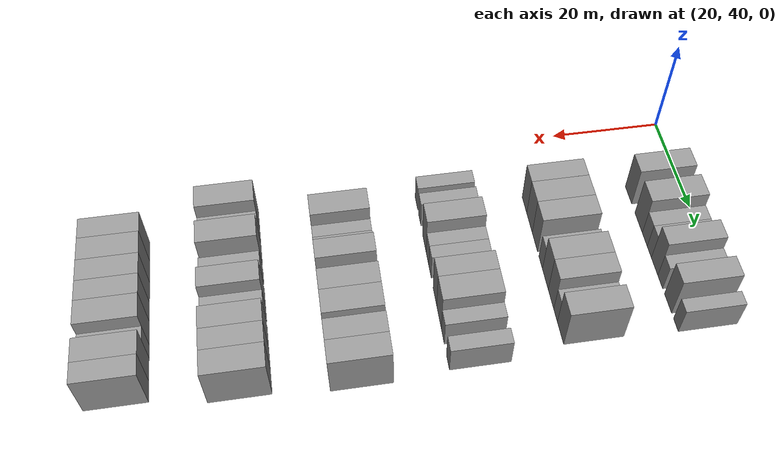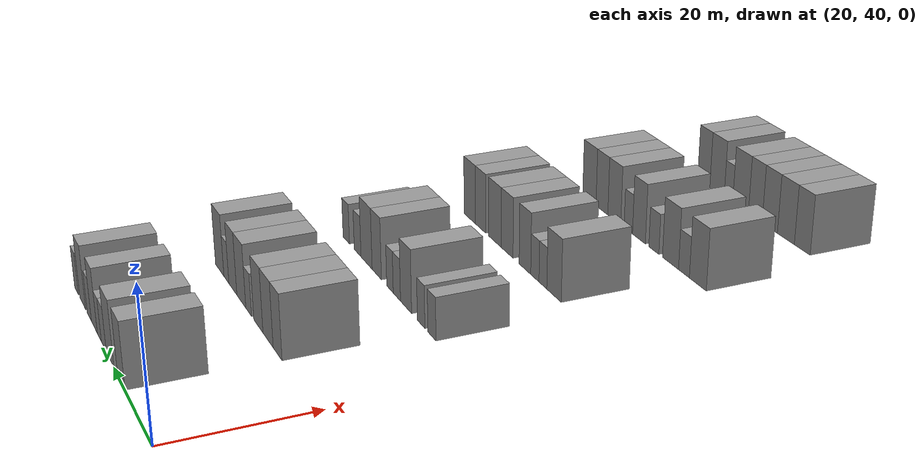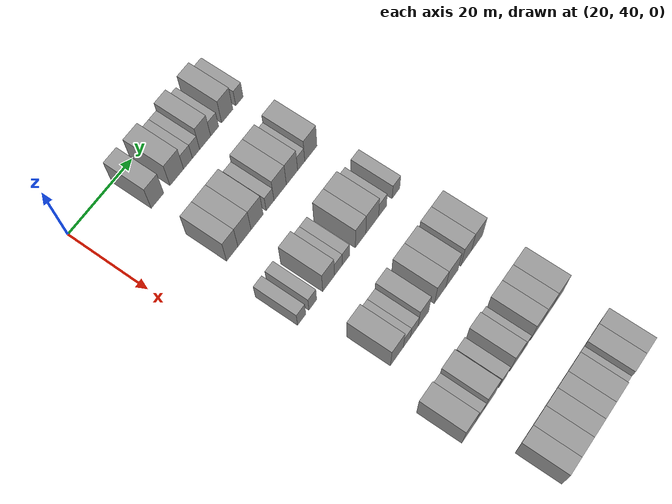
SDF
<sdf version="1.6">
 <world name="default">
  <model name="building_102">
   <static>1</static>
   <pose>25.0000 55.7656 0 0.000000 0.000000 0.000000</pose>
   <link name="link">
    <pose>0 0 4.50 0 0 0</pose>
    <collision name="collision"><geometry><box><size>10.0000 4.0245 9.0000</size></box></geometry></collision>
    <visual name="visual">
     <cast_shadows>0</cast_shadows>
     <geometry><box><size>10.0000 4.0245 9.0000</size></box></geometry>
     <material>
      <script>
       <uri>model://grey_wall/materials/scripts</uri>
       <uri>model://grey_wall/materials/textures</uri>
       <name>vrc/grey_wall</name>
      </script>
     </material>
    </visual>
   </link>
  </model>
  <model name="building_103">
   <static>1</static>
   <pose>25.0000 61.9876 0 0.000000 0.000000 0.000000</pose>
   <link name="link">
    <pose>0 0 4.50 0 0 0</pose>
    <collision name="collision"><geometry><box><size>10.0000 4.4195 9.0000</size></box></geometry></collision>
    <visual name="visual">
     <cast_shadows>0</cast_shadows>
     <geometry><box><size>10.0000 4.4195 9.0000</size></box></geometry>
     <material>
      <script>
       <uri>model://grey_wall/materials/scripts</uri>
       <uri>model://grey_wall/materials/textures</uri>
       <name>vrc/grey_wall</name>
      </script>
     </material>
    </visual>
   </link>
  </model>
  <model name="building_104">
   <static>1</static>
   <pose>25.0000 65.6505 0 0.000000 0.000000 0.000000</pose>
   <link name="link">
    <pose>0 0 3.00 0 0 0</pose>
    <collision name="collision"><geometry><box><size>10.0000 2.9064 6.0000</size></box></geometry></collision>
    <visual name="visual">
     <cast_shadows>0</cast_shadows>
     <geometry><box><size>10.0000 2.9064 6.0000</size></box></geometry>
     <material>
      <script>
       <uri>model://grey_wall/materials/scripts</uri>
       <uri>model://grey_wall/materials/textures</uri>
       <name>vrc/grey_wall</name>
      </script>
     </material>
    </visual>
   </link>
  </model>
  <model name="building_105">
   <static>1</static>
   <pose>25.0000 68.3104 0 0.000000 0.000000 0.000000</pose>
   <link name="link">
    <pose>0 0 3.00 0 0 0</pose>
    <collision name="collision"><geometry><box><size>10.0000 2.4135 6.0000</size></box></geometry></collision>
    <visual name="visual">
     <cast_shadows>0</cast_shadows>
     <geometry><box><size>10.0000 2.4135 6.0000</size></box></geometry>
     <material>
      <script>
       <uri>model://grey_wall/materials/scripts</uri>
       <uri>model://grey_wall/materials/textures</uri>
       <name>vrc/grey_wall</name>
      </script>
     </material>
    </visual>
   </link>
  </model>
  <model name="building_106">
   <static>1</static>
   <pose>25.0000 71.3491 0 0.000000 0.000000 0.000000</pose>
   <link name="link">
    <pose>0 0 4.50 0 0 0</pose>
    <collision name="collision"><geometry><box><size>10.0000 3.6638 9.0000</size></box></geometry></collision>
    <visual name="visual">
     <cast_shadows>0</cast_shadows>
     <geometry><box><size>10.0000 3.6638 9.0000</size></box></geometry>
     <material>
      <script>
       <uri>model://grey_wall/materials/scripts</uri>
       <uri>model://grey_wall/materials/textures</uri>
       <name>vrc/grey_wall</name>
      </script>
     </material>
    </visual>
   </link>
  </model>
  <model name="building_107">
   <static>1</static>
   <pose>25.0000 74.5199 0 0.000000 0.000000 0.000000</pose>
   <link name="link">
    <pose>0 0 3.00 0 0 0</pose>
    <collision name="collision"><geometry><box><size>10.0000 2.6778 6.0000</size></box></geometry></collision>
    <visual name="visual">
     <cast_shadows>0</cast_shadows>
     <geometry><box><size>10.0000 2.6778 6.0000</size></box></geometry>
     <material>
      <script>
       <uri>model://grey_wall/materials/scripts</uri>
       <uri>model://grey_wall/materials/textures</uri>
       <name>vrc/grey_wall</name>
      </script>
     </material>
    </visual>
   </link>
  </model>
  <model name="building_108">
   <static>1</static>
   <pose>25.0000 78.7645 0 0.000000 0.000000 0.000000</pose>
   <link name="link">
    <pose>0 0 4.50 0 0 0</pose>
    <collision name="collision"><geometry><box><size>10.0000 3.8114 9.0000</size></box></geometry></collision>
    <visual name="visual">
     <cast_shadows>0</cast_shadows>
     <geometry><box><size>10.0000 3.8114 9.0000</size></box></geometry>
     <material>
      <script>
       <uri>model://grey_wall/materials/scripts</uri>
       <uri>model://grey_wall/materials/textures</uri>
       <name>vrc/grey_wall</name>
      </script>
     </material>
    </visual>
   </link>
  </model>
  <model name="building_109">
   <static>1</static>
   <pose>25.0000 82.9263 0 0.000000 0.000000 0.000000</pose>
   <link name="link">
    <pose>0 0 3.00 0 0 0</pose>
    <collision name="collision"><geometry><box><size>10.0000 2.5121 6.0000</size></box></geometry></collision>
    <visual name="visual">
     <cast_shadows>0</cast_shadows>
     <geometry><box><size>10.0000 2.5121 6.0000</size></box></geometry>
     <material>
      <script>
       <uri>model://grey_wall/materials/scripts</uri>
       <uri>model://grey_wall/materials/textures</uri>
       <name>vrc/grey_wall</name>
      </script>
     </material>
    </visual>
   </link>
  </model>
  <model name="building_267">
   <static>1</static>
   <pose>44.0000 55.1977 0 0.000000 0.000000 0.000000</pose>
   <link name="link">
    <pose>0 0 4.50 0 0 0</pose>
    <collision name="collision"><geometry><box><size>10.0000 3.6688 9.0000</size></box></geometry></collision>
    <visual name="visual">
     <cast_shadows>0</cast_shadows>
     <geometry><box><size>10.0000 3.6688 9.0000</size></box></geometry>
     <material>
      <script>
       <uri>model://grey_wall/materials/scripts</uri>
       <uri>model://grey_wall/materials/textures</uri>
       <name>vrc/grey_wall</name>
      </script>
     </material>
    </visual>
   </link>
  </model>
  <model name="building_268">
   <static>1</static>
   <pose>44.0000 59.1911 0 0.000000 0.000000 0.000000</pose>
   <link name="link">
    <pose>0 0 4.50 0 0 0</pose>
    <collision name="collision"><geometry><box><size>10.0000 4.3178 9.0000</size></box></geometry></collision>
    <visual name="visual">
     <cast_shadows>0</cast_shadows>
     <geometry><box><size>10.0000 4.3178 9.0000</size></box></geometry>
     <material>
      <script>
       <uri>model://grey_wall/materials/scripts</uri>
       <uri>model://grey_wall/materials/textures</uri>
       <name>vrc/grey_wall</name>
      </script>
     </material>
    </visual>
   </link>
  </model>
  <model name="building_269">
   <static>1</static>
   <pose>44.0000 63.3660 0 0.000000 0.000000 0.000000</pose>
   <link name="link">
    <pose>0 0 4.50 0 0 0</pose>
    <collision name="collision"><geometry><box><size>10.0000 4.0321 9.0000</size></box></geometry></collision>
    <visual name="visual">
     <cast_shadows>0</cast_shadows>
     <geometry><box><size>10.0000 4.0321 9.0000</size></box></geometry>
     <material>
      <script>
       <uri>model://grey_wall/materials/scripts</uri>
       <uri>model://grey_wall/materials/textures</uri>
       <name>vrc/grey_wall</name>
      </script>
     </material>
    </visual>
   </link>
  </model>
  <model name="building_270">
   <static>1</static>
   <pose>44.0000 67.6890 0 0.000000 0.000000 0.000000</pose>
   <link name="link">
    <pose>0 0 3.00 0 0 0</pose>
    <collision name="collision"><geometry><box><size>10.0000 2.6138 6.0000</size></box></geometry></collision>
    <visual name="visual">
     <cast_shadows>0</cast_shadows>
     <geometry><box><size>10.0000 2.6138 6.0000</size></box></geometry>
     <material>
      <script>
       <uri>model://grey_wall/materials/scripts</uri>
       <uri>model://grey_wall/materials/textures</uri>
       <name>vrc/grey_wall</name>
      </script>
     </material>
    </visual>
   </link>
  </model>
  <model name="building_271">
   <static>1</static>
   <pose>44.0000 71.0904 0 0.000000 0.000000 0.000000</pose>
   <link name="link">
    <pose>0 0 4.50 0 0 0</pose>
    <collision name="collision"><geometry><box><size>10.0000 4.1890 9.0000</size></box></geometry></collision>
    <visual name="visual">
     <cast_shadows>0</cast_shadows>
     <geometry><box><size>10.0000 4.1890 9.0000</size></box></geometry>
     <material>
      <script>
       <uri>model://grey_wall/materials/scripts</uri>
       <uri>model://grey_wall/materials/textures</uri>
       <name>vrc/grey_wall</name>
      </script>
     </material>
    </visual>
   </link>
  </model>
  <model name="building_272">
   <static>1</static>
   <pose>44.0000 75.1054 0 0.000000 0.000000 0.000000</pose>
   <link name="link">
    <pose>0 0 4.50 0 0 0</pose>
    <collision name="collision"><geometry><box><size>10.0000 3.8410 9.0000</size></box></geometry></collision>
    <visual name="visual">
     <cast_shadows>0</cast_shadows>
     <geometry><box><size>10.0000 3.8410 9.0000</size></box></geometry>
     <material>
      <script>
       <uri>model://grey_wall/materials/scripts</uri>
       <uri>model://grey_wall/materials/textures</uri>
       <name>vrc/grey_wall</name>
      </script>
     </material>
    </visual>
   </link>
  </model>
  <model name="building_273">
   <static>1</static>
   <pose>44.0000 78.2526 0 0.000000 0.000000 0.000000</pose>
   <link name="link">
    <pose>0 0 3.00 0 0 0</pose>
    <collision name="collision"><geometry><box><size>10.0000 2.4534 6.0000</size></box></geometry></collision>
    <visual name="visual">
     <cast_shadows>0</cast_shadows>
     <geometry><box><size>10.0000 2.4534 6.0000</size></box></geometry>
     <material>
      <script>
       <uri>model://grey_wall/materials/scripts</uri>
       <uri>model://grey_wall/materials/textures</uri>
       <name>vrc/grey_wall</name>
      </script>
     </material>
    </visual>
   </link>
  </model>
  <model name="building_274">
   <static>1</static>
   <pose>44.0000 81.5974 0 0.000000 0.000000 0.000000</pose>
   <link name="link">
    <pose>0 0 4.50 0 0 0</pose>
    <collision name="collision"><geometry><box><size>10.0000 4.2361 9.0000</size></box></geometry></collision>
    <visual name="visual">
     <cast_shadows>0</cast_shadows>
     <geometry><box><size>10.0000 4.2361 9.0000</size></box></geometry>
     <material>
      <script>
       <uri>model://grey_wall/materials/scripts</uri>
       <uri>model://grey_wall/materials/textures</uri>
       <name>vrc/grey_wall</name>
      </script>
     </material>
    </visual>
   </link>
  </model>
  <model name="building_443">
   <static>1</static>
   <pose>63.0000 52.0084 0 0.000000 0.000000 0.000000</pose>
   <link name="link">
    <pose>0 0 3.00 0 0 0</pose>
    <collision name="collision"><geometry><box><size>10.0000 2.6977 6.0000</size></box></geometry></collision>
    <visual name="visual">
     <cast_shadows>0</cast_shadows>
     <geometry><box><size>10.0000 2.6977 6.0000</size></box></geometry>
     <material>
      <script>
       <uri>model://grey_wall/materials/scripts</uri>
       <uri>model://grey_wall/materials/textures</uri>
       <name>vrc/grey_wall</name>
      </script>
     </material>
    </visual>
   </link>
  </model>
  <model name="building_444">
   <static>1</static>
   <pose>63.0000 55.6458 0 0.000000 0.000000 0.000000</pose>
   <link name="link">
    <pose>0 0 3.00 0 0 0</pose>
    <collision name="collision"><geometry><box><size>10.0000 2.5772 6.0000</size></box></geometry></collision>
    <visual name="visual">
     <cast_shadows>0</cast_shadows>
     <geometry><box><size>10.0000 2.5772 6.0000</size></box></geometry>
     <material>
      <script>
       <uri>model://grey_wall/materials/scripts</uri>
       <uri>model://grey_wall/materials/textures</uri>
       <name>vrc/grey_wall</name>
      </script>
     </material>
    </visual>
   </link>
  </model>
  <model name="building_445">
   <static>1</static>
   <pose>63.0000 60.9073 0 0.000000 0.000000 0.000000</pose>
   <link name="link">
    <pose>0 0 4.50 0 0 0</pose>
    <collision name="collision"><geometry><box><size>10.0000 3.9458 9.0000</size></box></geometry></collision>
    <visual name="visual">
     <cast_shadows>0</cast_shadows>
     <geometry><box><size>10.0000 3.9458 9.0000</size></box></geometry>
     <material>
      <script>
       <uri>model://grey_wall/materials/scripts</uri>
       <uri>model://grey_wall/materials/textures</uri>
       <name>vrc/grey_wall</name>
      </script>
     </material>
    </visual>
   </link>
  </model>
  <model name="building_446">
   <static>1</static>
   <pose>63.0000 64.2091 0 0.000000 0.000000 0.000000</pose>
   <link name="link">
    <pose>0 0 3.00 0 0 0</pose>
    <collision name="collision"><geometry><box><size>10.0000 2.6579 6.0000</size></box></geometry></collision>
    <visual name="visual">
     <cast_shadows>0</cast_shadows>
     <geometry><box><size>10.0000 2.6579 6.0000</size></box></geometry>
     <material>
      <script>
       <uri>model://grey_wall/materials/scripts</uri>
       <uri>model://grey_wall/materials/textures</uri>
       <name>vrc/grey_wall</name>
      </script>
     </material>
    </visual>
   </link>
  </model>
  <model name="building_447">
   <static>1</static>
   <pose>63.0000 66.7558 0 0.000000 0.000000 0.000000</pose>
   <link name="link">
    <pose>0 0 3.00 0 0 0</pose>
    <collision name="collision"><geometry><box><size>10.0000 2.4356 6.0000</size></box></geometry></collision>
    <visual name="visual">
     <cast_shadows>0</cast_shadows>
     <geometry><box><size>10.0000 2.4356 6.0000</size></box></geometry>
     <material>
      <script>
       <uri>model://grey_wall/materials/scripts</uri>
       <uri>model://grey_wall/materials/textures</uri>
       <name>vrc/grey_wall</name>
      </script>
     </material>
    </visual>
   </link>
  </model>
  <model name="building_448">
   <static>1</static>
   <pose>63.0000 71.7750 0 0.000000 0.000000 0.000000</pose>
   <link name="link">
    <pose>0 0 4.50 0 0 0</pose>
    <collision name="collision"><geometry><box><size>10.0000 3.6027 9.0000</size></box></geometry></collision>
    <visual name="visual">
     <cast_shadows>0</cast_shadows>
     <geometry><box><size>10.0000 3.6027 9.0000</size></box></geometry>
     <material>
      <script>
       <uri>model://grey_wall/materials/scripts</uri>
       <uri>model://grey_wall/materials/textures</uri>
       <name>vrc/grey_wall</name>
      </script>
     </material>
    </visual>
   </link>
  </model>
  <model name="building_449">
   <static>1</static>
   <pose>63.0000 75.8003 0 0.000000 0.000000 0.000000</pose>
   <link name="link">
    <pose>0 0 4.50 0 0 0</pose>
    <collision name="collision"><geometry><box><size>10.0000 4.4479 9.0000</size></box></geometry></collision>
    <visual name="visual">
     <cast_shadows>0</cast_shadows>
     <geometry><box><size>10.0000 4.4479 9.0000</size></box></geometry>
     <material>
      <script>
       <uri>model://grey_wall/materials/scripts</uri>
       <uri>model://grey_wall/materials/textures</uri>
       <name>vrc/grey_wall</name>
      </script>
     </material>
    </visual>
   </link>
  </model>
  <model name="building_450">
   <static>1</static>
   <pose>63.0000 79.4029 0 0.000000 0.000000 0.000000</pose>
   <link name="link">
    <pose>0 0 3.00 0 0 0</pose>
    <collision name="collision"><geometry><box><size>10.0000 2.7573 6.0000</size></box></geometry></collision>
    <visual name="visual">
     <cast_shadows>0</cast_shadows>
     <geometry><box><size>10.0000 2.7573 6.0000</size></box></geometry>
     <material>
      <script>
       <uri>model://grey_wall/materials/scripts</uri>
       <uri>model://grey_wall/materials/textures</uri>
       <name>vrc/grey_wall</name>
      </script>
     </material>
    </visual>
   </link>
  </model>
  <model name="building_451">
   <static>1</static>
   <pose>63.0000 84.1377 0 0.000000 0.000000 0.000000</pose>
   <link name="link">
    <pose>0 0 3.00 0 0 0</pose>
    <collision name="collision"><geometry><box><size>10.0000 2.7123 6.0000</size></box></geometry></collision>
    <visual name="visual">
     <cast_shadows>0</cast_shadows>
     <geometry><box><size>10.0000 2.7123 6.0000</size></box></geometry>
     <material>
      <script>
       <uri>model://grey_wall/materials/scripts</uri>
       <uri>model://grey_wall/materials/textures</uri>
       <name>vrc/grey_wall</name>
      </script>
     </material>
    </visual>
   </link>
  </model>
  <model name="building_627">
   <static>1</static>
   <pose>82.0000 56.3258 0 0.000000 0.000000 0.000000</pose>
   <link name="link">
    <pose>0 0 4.50 0 0 0</pose>
    <collision name="collision"><geometry><box><size>10.0000 4.3289 9.0000</size></box></geometry></collision>
    <visual name="visual">
     <cast_shadows>0</cast_shadows>
     <geometry><box><size>10.0000 4.3289 9.0000</size></box></geometry>
     <material>
      <script>
       <uri>model://grey_wall/materials/scripts</uri>
       <uri>model://grey_wall/materials/textures</uri>
       <name>vrc/grey_wall</name>
      </script>
     </material>
    </visual>
   </link>
  </model>
  <model name="building_628">
   <static>1</static>
   <pose>82.0000 59.6903 0 0.000000 0.000000 0.000000</pose>
   <link name="link">
    <pose>0 0 3.00 0 0 0</pose>
    <collision name="collision"><geometry><box><size>10.0000 2.4000 6.0000</size></box></geometry></collision>
    <visual name="visual">
     <cast_shadows>0</cast_shadows>
     <geometry><box><size>10.0000 2.4000 6.0000</size></box></geometry>
     <material>
      <script>
       <uri>model://grey_wall/materials/scripts</uri>
       <uri>model://grey_wall/materials/textures</uri>
       <name>vrc/grey_wall</name>
      </script>
     </material>
    </visual>
   </link>
  </model>
  <model name="building_629">
   <static>1</static>
   <pose>82.0000 62.1842 0 0.000000 0.000000 0.000000</pose>
   <link name="link">
    <pose>0 0 3.00 0 0 0</pose>
    <collision name="collision"><geometry><box><size>10.0000 2.5877 6.0000</size></box></geometry></collision>
    <visual name="visual">
     <cast_shadows>0</cast_shadows>
     <geometry><box><size>10.0000 2.5877 6.0000</size></box></geometry>
     <material>
      <script>
       <uri>model://grey_wall/materials/scripts</uri>
       <uri>model://grey_wall/materials/textures</uri>
       <name>vrc/grey_wall</name>
      </script>
     </material>
    </visual>
   </link>
  </model>
  <model name="building_630">
   <static>1</static>
   <pose>82.0000 65.3416 0 0.000000 0.000000 0.000000</pose>
   <link name="link">
    <pose>0 0 4.50 0 0 0</pose>
    <collision name="collision"><geometry><box><size>10.0000 3.7273 9.0000</size></box></geometry></collision>
    <visual name="visual">
     <cast_shadows>0</cast_shadows>
     <geometry><box><size>10.0000 3.7273 9.0000</size></box></geometry>
     <material>
      <script>
       <uri>model://grey_wall/materials/scripts</uri>
       <uri>model://grey_wall/materials/textures</uri>
       <name>vrc/grey_wall</name>
      </script>
     </material>
    </visual>
   </link>
  </model>
  <model name="building_631">
   <static>1</static>
   <pose>82.0000 71.1906 0 0.000000 0.000000 0.000000</pose>
   <link name="link">
    <pose>0 0 4.50 0 0 0</pose>
    <collision name="collision"><geometry><box><size>10.0000 3.9707 9.0000</size></box></geometry></collision>
    <visual name="visual">
     <cast_shadows>0</cast_shadows>
     <geometry><box><size>10.0000 3.9707 9.0000</size></box></geometry>
     <material>
      <script>
       <uri>model://grey_wall/materials/scripts</uri>
       <uri>model://grey_wall/materials/textures</uri>
       <name>vrc/grey_wall</name>
      </script>
     </material>
    </visual>
   </link>
  </model>
  <model name="building_632">
   <static>1</static>
   <pose>82.0000 75.3583 0 0.000000 0.000000 0.000000</pose>
   <link name="link">
    <pose>0 0 4.50 0 0 0</pose>
    <collision name="collision"><geometry><box><size>10.0000 4.3647 9.0000</size></box></geometry></collision>
    <visual name="visual">
     <cast_shadows>0</cast_shadows>
     <geometry><box><size>10.0000 4.3647 9.0000</size></box></geometry>
     <material>
      <script>
       <uri>model://grey_wall/materials/scripts</uri>
       <uri>model://grey_wall/materials/textures</uri>
       <name>vrc/grey_wall</name>
      </script>
     </material>
    </visual>
   </link>
  </model>
  <model name="building_633">
   <static>1</static>
   <pose>82.0000 80.4125 0 0.000000 0.000000 0.000000</pose>
   <link name="link">
    <pose>0 0 4.50 0 0 0</pose>
    <collision name="collision"><geometry><box><size>10.0000 3.7439 9.0000</size></box></geometry></collision>
    <visual name="visual">
     <cast_shadows>0</cast_shadows>
     <geometry><box><size>10.0000 3.7439 9.0000</size></box></geometry>
     <material>
      <script>
       <uri>model://grey_wall/materials/scripts</uri>
       <uri>model://grey_wall/materials/textures</uri>
       <name>vrc/grey_wall</name>
      </script>
     </material>
    </visual>
   </link>
  </model>
  <model name="building_634">
   <static>1</static>
   <pose>82.0000 84.3287 0 0.000000 0.000000 0.000000</pose>
   <link name="link">
    <pose>0 0 4.50 0 0 0</pose>
    <collision name="collision"><geometry><box><size>10.0000 4.0885 9.0000</size></box></geometry></collision>
    <visual name="visual">
     <cast_shadows>0</cast_shadows>
     <geometry><box><size>10.0000 4.0885 9.0000</size></box></geometry>
     <material>
      <script>
       <uri>model://grey_wall/materials/scripts</uri>
       <uri>model://grey_wall/materials/textures</uri>
       <name>vrc/grey_wall</name>
      </script>
     </material>
    </visual>
   </link>
  </model>
  <model name="building_805">
   <static>1</static>
   <pose>101.0000 51.7249 0 0.000000 0.000000 0.000000</pose>
   <link name="link">
    <pose>0 0 4.50 0 0 0</pose>
    <collision name="collision"><geometry><box><size>10.0000 4.4118 9.0000</size></box></geometry></collision>
    <visual name="visual">
     <cast_shadows>0</cast_shadows>
     <geometry><box><size>10.0000 4.4118 9.0000</size></box></geometry>
     <material>
      <script>
       <uri>model://grey_wall/materials/scripts</uri>
       <uri>model://grey_wall/materials/textures</uri>
       <name>vrc/grey_wall</name>
      </script>
     </material>
    </visual>
   </link>
  </model>
  <model name="building_806">
   <static>1</static>
   <pose>101.0000 55.3804 0 0.000000 0.000000 0.000000</pose>
   <link name="link">
    <pose>0 0 3.00 0 0 0</pose>
    <collision name="collision"><geometry><box><size>10.0000 2.8993 6.0000</size></box></geometry></collision>
    <visual name="visual">
     <cast_shadows>0</cast_shadows>
     <geometry><box><size>10.0000 2.8993 6.0000</size></box></geometry>
     <material>
      <script>
       <uri>model://grey_wall/materials/scripts</uri>
       <uri>model://grey_wall/materials/textures</uri>
       <name>vrc/grey_wall</name>
      </script>
     </material>
    </visual>
   </link>
  </model>
  <model name="building_807">
   <static>1</static>
   <pose>101.0000 59.0362 0 0.000000 0.000000 0.000000</pose>
   <link name="link">
    <pose>0 0 4.50 0 0 0</pose>
    <collision name="collision"><geometry><box><size>10.0000 4.4124 9.0000</size></box></geometry></collision>
    <visual name="visual">
     <cast_shadows>0</cast_shadows>
     <geometry><box><size>10.0000 4.4124 9.0000</size></box></geometry>
     <material>
      <script>
       <uri>model://grey_wall/materials/scripts</uri>
       <uri>model://grey_wall/materials/textures</uri>
       <name>vrc/grey_wall</name>
      </script>
     </material>
    </visual>
   </link>
  </model>
  <model name="building_808">
   <static>1</static>
   <pose>101.0000 63.6746 0 0.000000 0.000000 0.000000</pose>
   <link name="link">
    <pose>0 0 3.00 0 0 0</pose>
    <collision name="collision"><geometry><box><size>10.0000 2.8644 6.0000</size></box></geometry></collision>
    <visual name="visual">
     <cast_shadows>0</cast_shadows>
     <geometry><box><size>10.0000 2.8644 6.0000</size></box></geometry>
     <material>
      <script>
       <uri>model://grey_wall/materials/scripts</uri>
       <uri>model://grey_wall/materials/textures</uri>
       <name>vrc/grey_wall</name>
      </script>
     </material>
    </visual>
   </link>
  </model>
  <model name="building_809">
   <static>1</static>
   <pose>101.0000 67.9982 0 0.000000 0.000000 0.000000</pose>
   <link name="link">
    <pose>0 0 4.50 0 0 0</pose>
    <collision name="collision"><geometry><box><size>10.0000 3.7828 9.0000</size></box></geometry></collision>
    <visual name="visual">
     <cast_shadows>0</cast_shadows>
     <geometry><box><size>10.0000 3.7828 9.0000</size></box></geometry>
     <material>
      <script>
       <uri>model://grey_wall/materials/scripts</uri>
       <uri>model://grey_wall/materials/textures</uri>
       <name>vrc/grey_wall</name>
      </script>
     </material>
    </visual>
   </link>
  </model>
  <model name="building_810">
   <static>1</static>
   <pose>101.0000 71.1543 0 0.000000 0.000000 0.000000</pose>
   <link name="link">
    <pose>0 0 3.00 0 0 0</pose>
    <collision name="collision"><geometry><box><size>10.0000 2.5293 6.0000</size></box></geometry></collision>
    <visual name="visual">
     <cast_shadows>0</cast_shadows>
     <geometry><box><size>10.0000 2.5293 6.0000</size></box></geometry>
     <material>
      <script>
       <uri>model://grey_wall/materials/scripts</uri>
       <uri>model://grey_wall/materials/textures</uri>
       <name>vrc/grey_wall</name>
      </script>
     </material>
    </visual>
   </link>
  </model>
  <model name="building_811">
   <static>1</static>
   <pose>101.0000 75.4215 0 0.000000 0.000000 0.000000</pose>
   <link name="link">
    <pose>0 0 4.50 0 0 0</pose>
    <collision name="collision"><geometry><box><size>10.0000 4.0051 9.0000</size></box></geometry></collision>
    <visual name="visual">
     <cast_shadows>0</cast_shadows>
     <geometry><box><size>10.0000 4.0051 9.0000</size></box></geometry>
     <material>
      <script>
       <uri>model://grey_wall/materials/scripts</uri>
       <uri>model://grey_wall/materials/textures</uri>
       <name>vrc/grey_wall</name>
      </script>
     </material>
    </visual>
   </link>
  </model>
  <model name="building_812">
   <static>1</static>
   <pose>101.0000 79.3054 0 0.000000 0.000000 0.000000</pose>
   <link name="link">
    <pose>0 0 4.50 0 0 0</pose>
    <collision name="collision"><geometry><box><size>10.0000 3.7627 9.0000</size></box></geometry></collision>
    <visual name="visual">
     <cast_shadows>0</cast_shadows>
     <geometry><box><size>10.0000 3.7627 9.0000</size></box></geometry>
     <material>
      <script>
       <uri>model://grey_wall/materials/scripts</uri>
       <uri>model://grey_wall/materials/textures</uri>
       <name>vrc/grey_wall</name>
      </script>
     </material>
    </visual>
   </link>
  </model>
  <model name="building_813">
   <static>1</static>
   <pose>101.0000 83.3498 0 0.000000 0.000000 0.000000</pose>
   <link name="link">
    <pose>0 0 4.50 0 0 0</pose>
    <collision name="collision"><geometry><box><size>10.0000 4.3261 9.0000</size></box></geometry></collision>
    <visual name="visual">
     <cast_shadows>0</cast_shadows>
     <geometry><box><size>10.0000 4.3261 9.0000</size></box></geometry>
     <material>
      <script>
       <uri>model://grey_wall/materials/scripts</uri>
       <uri>model://grey_wall/materials/textures</uri>
       <name>vrc/grey_wall</name>
      </script>
     </material>
    </visual>
   </link>
  </model>
  <model name="building_979">
   <static>1</static>
   <pose>120.0000 55.5474 0 0.000000 0.000000 0.000000</pose>
   <link name="link">
    <pose>0 0 4.50 0 0 0</pose>
    <collision name="collision"><geometry><box><size>10.0000 3.9133 9.0000</size></box></geometry></collision>
    <visual name="visual">
     <cast_shadows>0</cast_shadows>
     <geometry><box><size>10.0000 3.9133 9.0000</size></box></geometry>
     <material>
      <script>
       <uri>model://grey_wall/materials/scripts</uri>
       <uri>model://grey_wall/materials/textures</uri>
       <name>vrc/grey_wall</name>
      </script>
     </material>
    </visual>
   </link>
  </model>
  <model name="building_980">
   <static>1</static>
   <pose>120.0000 59.6560 0 0.000000 0.000000 0.000000</pose>
   <link name="link">
    <pose>0 0 4.50 0 0 0</pose>
    <collision name="collision"><geometry><box><size>10.0000 4.3039 9.0000</size></box></geometry></collision>
    <visual name="visual">
     <cast_shadows>0</cast_shadows>
     <geometry><box><size>10.0000 4.3039 9.0000</size></box></geometry>
     <material>
      <script>
       <uri>model://grey_wall/materials/scripts</uri>
       <uri>model://grey_wall/materials/textures</uri>
       <name>vrc/grey_wall</name>
      </script>
     </material>
    </visual>
   </link>
  </model>
  <model name="building_981">
   <static>1</static>
   <pose>120.0000 63.8043 0 0.000000 0.000000 0.000000</pose>
   <link name="link">
    <pose>0 0 4.50 0 0 0</pose>
    <collision name="collision"><geometry><box><size>10.0000 3.9927 9.0000</size></box></geometry></collision>
    <visual name="visual">
     <cast_shadows>0</cast_shadows>
     <geometry><box><size>10.0000 3.9927 9.0000</size></box></geometry>
     <material>
      <script>
       <uri>model://grey_wall/materials/scripts</uri>
       <uri>model://grey_wall/materials/textures</uri>
       <name>vrc/grey_wall</name>
      </script>
     </material>
    </visual>
   </link>
  </model>
  <model name="building_982">
   <static>1</static>
   <pose>120.0000 67.6535 0 0.000000 0.000000 0.000000</pose>
   <link name="link">
    <pose>0 0 4.50 0 0 0</pose>
    <collision name="collision"><geometry><box><size>10.0000 3.7058 9.0000</size></box></geometry></collision>
    <visual name="visual">
     <cast_shadows>0</cast_shadows>
     <geometry><box><size>10.0000 3.7058 9.0000</size></box></geometry>
     <material>
      <script>
       <uri>model://grey_wall/materials/scripts</uri>
       <uri>model://grey_wall/materials/textures</uri>
       <name>vrc/grey_wall</name>
      </script>
     </material>
    </visual>
   </link>
  </model>
  <model name="building_983">
   <static>1</static>
   <pose>120.0000 71.6755 0 0.000000 0.000000 0.000000</pose>
   <link name="link">
    <pose>0 0 4.50 0 0 0</pose>
    <collision name="collision"><geometry><box><size>10.0000 4.3382 9.0000</size></box></geometry></collision>
    <visual name="visual">
     <cast_shadows>0</cast_shadows>
     <geometry><box><size>10.0000 4.3382 9.0000</size></box></geometry>
     <material>
      <script>
       <uri>model://grey_wall/materials/scripts</uri>
       <uri>model://grey_wall/materials/textures</uri>
       <name>vrc/grey_wall</name>
      </script>
     </material>
    </visual>
   </link>
  </model>
  <model name="building_984">
   <static>1</static>
   <pose>120.0000 75.0530 0 0.000000 0.000000 0.000000</pose>
   <link name="link">
    <pose>0 0 3.00 0 0 0</pose>
    <collision name="collision"><geometry><box><size>10.0000 2.4168 6.0000</size></box></geometry></collision>
    <visual name="visual">
     <cast_shadows>0</cast_shadows>
     <geometry><box><size>10.0000 2.4168 6.0000</size></box></geometry>
     <material>
      <script>
       <uri>model://grey_wall/materials/scripts</uri>
       <uri>model://grey_wall/materials/textures</uri>
       <name>vrc/grey_wall</name>
      </script>
     </material>
    </visual>
   </link>
  </model>
  <model name="building_985">
   <static>1</static>
   <pose>120.0000 78.3462 0 0.000000 0.000000 0.000000</pose>
   <link name="link">
    <pose>0 0 4.50 0 0 0</pose>
    <collision name="collision"><geometry><box><size>10.0000 4.1695 9.0000</size></box></geometry></collision>
    <visual name="visual">
     <cast_shadows>0</cast_shadows>
     <geometry><box><size>10.0000 4.1695 9.0000</size></box></geometry>
     <material>
      <script>
       <uri>model://grey_wall/materials/scripts</uri>
       <uri>model://grey_wall/materials/textures</uri>
       <name>vrc/grey_wall</name>
      </script>
     </material>
    </visual>
   </link>
  </model>
  <model name="building_986">
   <static>1</static>
   <pose>120.0000 82.2348 0 0.000000 0.000000 0.000000</pose>
   <link name="link">
    <pose>0 0 4.50 0 0 0</pose>
    <collision name="collision"><geometry><box><size>10.0000 3.6077 9.0000</size></box></geometry></collision>
    <visual name="visual">
     <cast_shadows>0</cast_shadows>
     <geometry><box><size>10.0000 3.6077 9.0000</size></box></geometry>
     <material>
      <script>
       <uri>model://grey_wall/materials/scripts</uri>
       <uri>model://grey_wall/materials/textures</uri>
       <name>vrc/grey_wall</name>
      </script>
     </material>
    </visual>
   </link>
  </model>
 </world>
</sdf>
